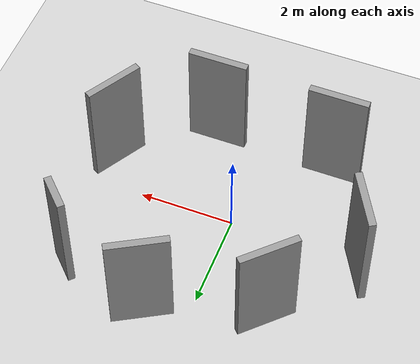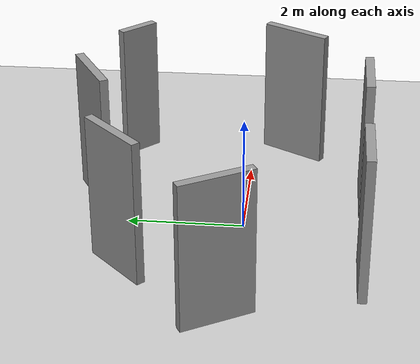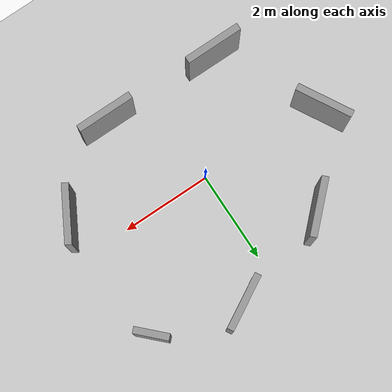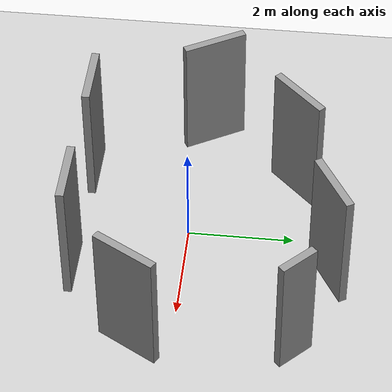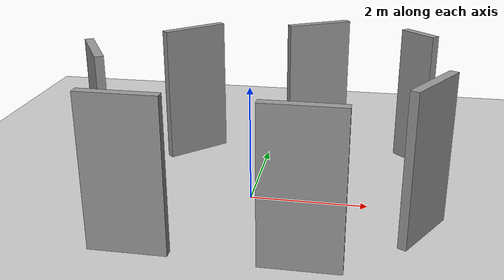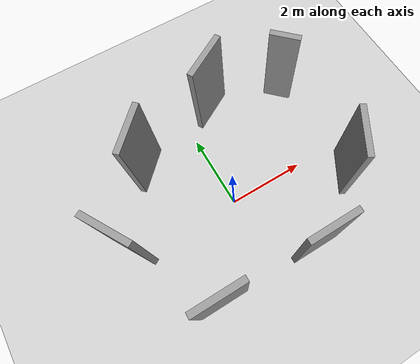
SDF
<sdf version="1.4">
  <world name="default">

    <scene>
      <ambient>0.4 0.4 0.4 1</ambient>
      <background>0.7 0.7 0.7 1</background>
      <shadows>true</shadows>
    </scene>

    <!-- A global light source -->
    <include>
      <uri>model://sun</uri>
    </include>

    <!-- A ground plane -->
    <include>
      <uri>model://ground_plane</uri>
    </include>

    <physics type="ode">
      <real_time_update_rate>1000.0</real_time_update_rate>
      <max_step_size>0.001</max_step_size>
      <real_time_factor>1</real_time_factor>
      <ode>
        <solver>
          <type>quick</type>
          <iters>150</iters>
          <precon_iters>0</precon_iters>
          <sor>1.400000</sor>
          <use_dynamic_moi_rescaling>1</use_dynamic_moi_rescaling>
        </solver>
        <constraints>
          <cfm>0.00001</cfm>
          <erp>0.2</erp>
          <contact_max_correcting_vel>2000.000000</contact_max_correcting_vel>
          <contact_surface_layer>0.01000</contact_surface_layer>
        </constraints>
      </ode>
    </physics>
  <model name='boundary1'>
    <pose>0.063151 0.472115 0 0 -0 0</pose>
    <link name='Wall_0'>
      <collision name='Wall_0_Collision'>
        <geometry>
          <box>
            <size>1.25 0.15 2.5</size>
          </box>
        </geometry>
        <pose>0 0 1.25 0 -0 0</pose>
      </collision>
      <visual name='Wall_0_Visual'>
        <pose>0 0 1.25 0 -0 0</pose>
        <geometry>
          <box>
            <size>1.25 0.15 2.5</size>
          </box>
        </geometry>
        <material>
          <script>
            <uri>file://media/materials/scripts/gazebo.material</uri>
            <name>Gazebo/Grey</name>
          </script>
          <ambient>1 1 1 1</ambient>
        </material>
        <meta>
          <layer>0</layer>
        </meta>
      </visual>
      <pose>-1.55641 -2.47118 0 0 -0 0</pose>
    </link>
    <link name='Wall_10'>
      <collision name='Wall_10_Collision'>
        <geometry>
          <box>
            <size>1.25 0.15 2.5</size>
          </box>
        </geometry>
        <pose>0 0 1.25 0 -0 0</pose>
      </collision>
      <visual name='Wall_10_Visual'>
        <pose>0 0 1.25 0 -0 0</pose>
        <geometry>
          <box>
            <size>1.25 0.15 2.5</size>
          </box>
        </geometry>
        <material>
          <script>
            <uri>file://media/materials/scripts/gazebo.material</uri>
            <name>Gazebo/Grey</name>
          </script>
          <ambient>1 1 1 1</ambient>
        </material>
        <meta>
          <layer>0</layer>
        </meta>
      </visual>
      <pose>0.803302 2.21436 0 0 -0 0.523599</pose>
    </link>
    <link name='Wall_12'>
      <collision name='Wall_12_Collision'>
        <geometry>
          <box>
            <size>0.75 0.15 2.5</size>
          </box>
        </geometry>
        <pose>0 0 1.25 0 -0 0</pose>
      </collision>
      <visual name='Wall_12_Visual'>
        <pose>0 0 1.25 0 -0 0</pose>
        <geometry>
          <box>
            <size>0.75 0.15 2.5</size>
          </box>
        </geometry>
        <material>
          <script>
            <uri>file://media/materials/scripts/gazebo.material</uri>
            <name>Gazebo/Grey</name>
          </script>
          <ambient>1 1 1 1</ambient>
        </material>
        <meta>
          <layer>0</layer>
        </meta>
      </visual>
      <pose>2.69876 1.71202 0 0 -0 -0.785398</pose>
    </link>
    <link name='Wall_2'>
      <collision name='Wall_2_Collision'>
        <geometry>
          <box>
            <size>1.25 0.15 2.5</size>
          </box>
        </geometry>
        <pose>0 0 1.25 0 -0 0</pose>
      </collision>
      <visual name='Wall_2_Visual'>
        <pose>0 0 1.25 0 -0 0</pose>
        <geometry>
          <box>
            <size>1.25 0.15 2.5</size>
          </box>
        </geometry>
        <material>
          <script>
            <uri>file://media/materials/scripts/gazebo.material</uri>
            <name>Gazebo/Grey</name>
          </script>
          <ambient>1 1 1 1</ambient>
        </material>
        <meta>
          <layer>0</layer>
        </meta>
      </visual>
      <pose>1.02908 -2.51681 0 0 -0 0</pose>
    </link>
    <link name='Wall_4'>
      <collision name='Wall_4_Collision'>
        <geometry>
          <box>
            <size>1.25 0.15 2.5</size>
          </box>
        </geometry>
        <pose>0 0 1.25 0 -0 0</pose>
      </collision>
      <visual name='Wall_4_Visual'>
        <pose>0 0 1.25 0 -0 0</pose>
        <geometry>
          <box>
            <size>1.25 0.15 2.5</size>
          </box>
        </geometry>
        <material>
          <script>
            <uri>file://media/materials/scripts/gazebo.material</uri>
            <name>Gazebo/Grey</name>
          </script>
          <ambient>1 1 1 1</ambient>
        </material>
        <meta>
          <layer>0</layer>
        </meta>
      </visual>
      <pose>2.79205 -1.21922 0 0 -0 1.0472</pose>
    </link>
    <link name='Wall_6'>
      <collision name='Wall_6_Collision'>
        <geometry>
          <box>
            <size>1.25 0.15 2.5</size>
          </box>
        </geometry>
        <pose>0 0 1.25 0 -0 0</pose>
      </collision>
      <visual name='Wall_6_Visual'>
        <pose>0 0 1.25 0 -0 0</pose>
        <geometry>
          <box>
            <size>1.25 0.15 2.5</size>
          </box>
        </geometry>
        <material>
          <script>
            <uri>file://media/materials/scripts/gazebo.material</uri>
            <name>Gazebo/Grey</name>
          </script>
          <ambient>1 1 1 1</ambient>
        </material>
        <meta>
          <layer>0</layer>
        </meta>
      </visual>
      <pose>-2.79205 -0.26107 0 0 -0 2.0944</pose>
    </link>
    <link name='Wall_8'>
      <collision name='Wall_8_Collision'>
        <geometry>
          <box>
            <size>1.25 0.15 2.5</size>
          </box>
        </geometry>
        <pose>0 0 1.25 0 -0 0</pose>
      </collision>
      <visual name='Wall_8_Visual'>
        <pose>0 0 1.25 0 -0 0</pose>
        <geometry>
          <box>
            <size>1.25 0.15 2.5</size>
          </box>
        </geometry>
        <material>
          <script>
            <uri>file://media/materials/scripts/gazebo.material</uri>
            <name>Gazebo/Grey</name>
          </script>
          <ambient>1 1 1 1</ambient>
        </material>
        <meta>
          <layer>0</layer>
        </meta>
      </visual>
      <pose>-1.50458 1.46137 0 0 -0 0.785398</pose>
    </link>
    <static>1</static>
  </model>

  </world>
</sdf>
